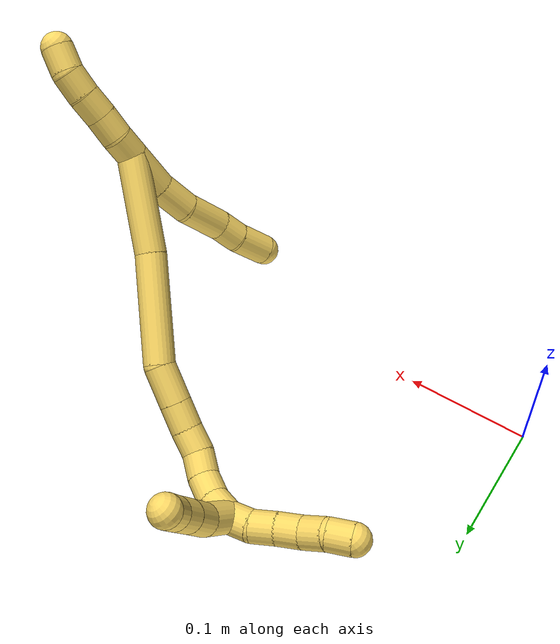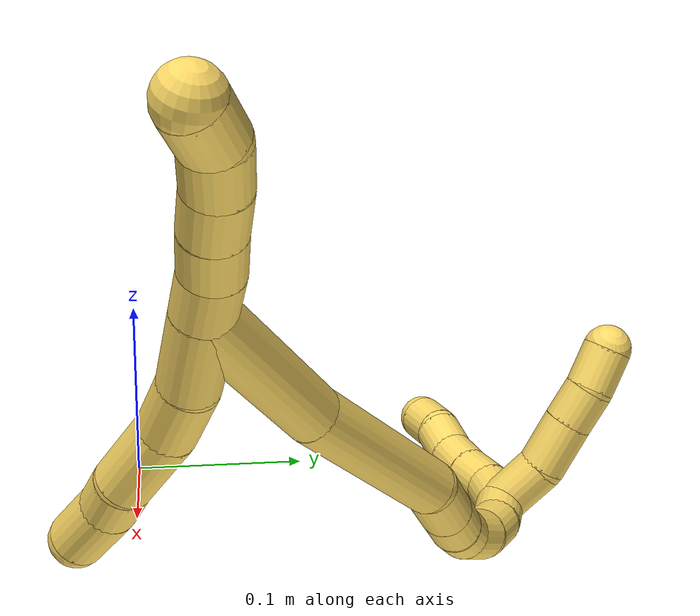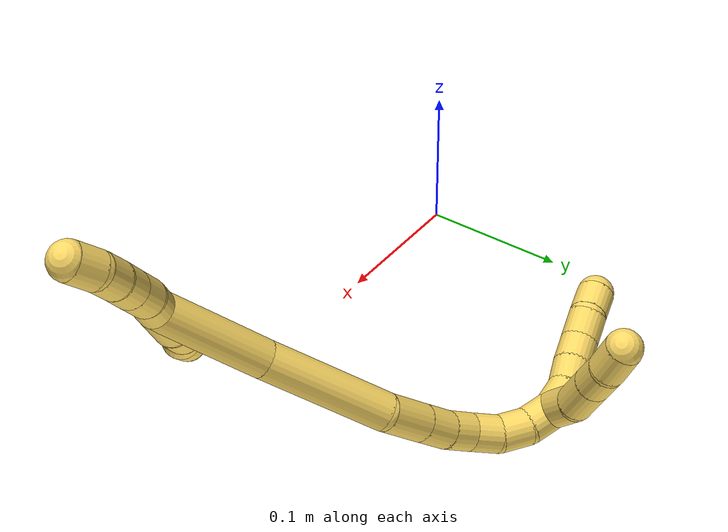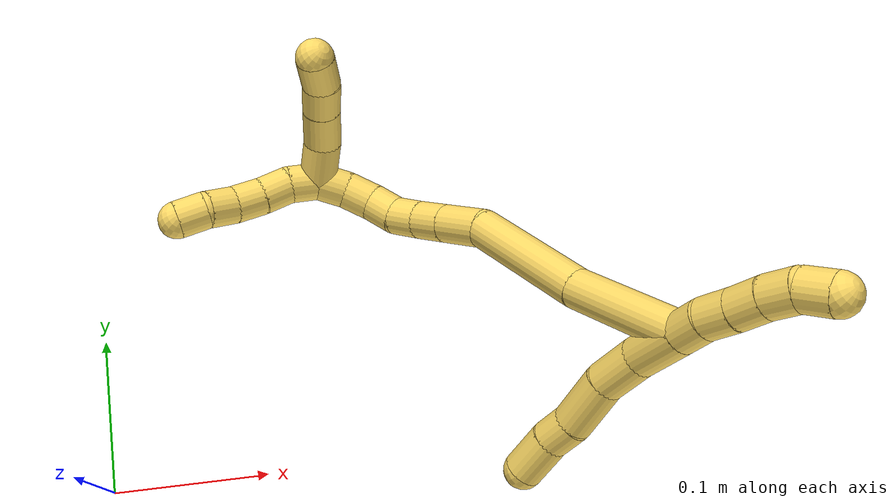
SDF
<sdf version="1.7">
 <world name="default">
  <model name="5">
   <static>0</static>
   <link name="5">
    <collision name="collision-cylinder-e_1_2_8">
     <pose>0.000114 -0.000291 -0.017579 3.12503 0.006497 0.747533</pose>
     <geometry><cylinder><radius>0.0125</radius><length>0.035163</length></cylinder></geometry>
     <surface>
      <friction><ode><mu>1.16</mu><mu2>1.16</mu2><slip1>0</slip1><slip2>0</slip2></ode></friction>
      <contact><ode><kp>1e+06</kp><kd>1</kd><max_vel>0</max_vel><min_depth>0.001</min_depth></ode></contact>
     </surface>
    </collision>
    <visual name="visual-cylinder-e_1_2_8">
     <pose>0.000114 -0.000291 -0.017579 3.12503 0.006497 0.747533</pose>
     <geometry><cylinder><radius>0.0125</radius><length>0.035163</length></cylinder></geometry>
     <material><ambient>1 0.858824 0.4 1</ambient></material>
    </visual>
    <collision name="collision-cylinder-e_2_8_9">
     <pose>-0.001704 -0.002597 -0.049459 3.00166 -0.133036 -1.52009</pose>
     <geometry><cylinder><radius>0.0125</radius><length>0.029145</length></cylinder></geometry>
     <surface>
      <friction><ode><mu>1.16</mu><mu2>1.16</mu2><slip1>0</slip1><slip2>0</slip2></ode></friction>
      <contact><ode><kp>1e+06</kp><kd>1</kd><max_vel>0</max_vel><min_depth>0.001</min_depth></ode></contact>
     </surface>
    </collision>
    <visual name="visual-cylinder-e_2_8_9">
     <pose>-0.001704 -0.002597 -0.049459 3.00166 -0.133036 -1.52009</pose>
     <geometry><cylinder><radius>0.0125</radius><length>0.029145</length></cylinder></geometry>
     <material><ambient>1 0.858824 0.4 1</ambient></material>
    </visual>
    <collision name="collision-cylinder-e_3_9_10">
     <pose>-0.005402 -0.01108 -0.08067 2.77621 -0.097187 -0.514773</pose>
     <geometry><cylinder><radius>0.0125</radius><length>0.036378</length></cylinder></geometry>
     <surface>
      <friction><ode><mu>1.16</mu><mu2>1.16</mu2><slip1>0</slip1><slip2>0</slip2></ode></friction>
      <contact><ode><kp>1e+06</kp><kd>1</kd><max_vel>0</max_vel><min_depth>0.001</min_depth></ode></contact>
     </surface>
    </collision>
    <visual name="visual-cylinder-e_3_9_10">
     <pose>-0.005402 -0.01108 -0.08067 2.77621 -0.097187 -0.514773</pose>
     <geometry><cylinder><radius>0.0125</radius><length>0.036378</length></cylinder></geometry>
     <material><ambient>1 0.858824 0.4 1</ambient></material>
    </visual>
    <collision name="collision-cylinder-e_4_10_11">
     <pose>-0.00909 -0.019291 -0.107341 2.96501 -0.191531 -1.65245</pose>
     <geometry><cylinder><radius>0.0125</radius><length>0.020204</length></cylinder></geometry>
     <surface>
      <friction><ode><mu>1.16</mu><mu2>1.16</mu2><slip1>0</slip1><slip2>0</slip2></ode></friction>
      <contact><ode><kp>1e+06</kp><kd>1</kd><max_vel>0</max_vel><min_depth>0.001</min_depth></ode></contact>
     </surface>
    </collision>
    <visual name="visual-cylinder-e_4_10_11">
     <pose>-0.00909 -0.019291 -0.107341 2.96501 -0.191531 -1.65245</pose>
     <geometry><cylinder><radius>0.0125</radius><length>0.020204</length></cylinder></geometry>
     <material><ambient>1 0.858824 0.4 1</ambient></material>
    </visual>
    <collision name="collision-cylinder-e_5_11_6">
     <pose>-0.013747 -0.025998 -0.130511 2.78689 -0.188919 -0.972511</pose>
     <geometry><cylinder><radius>0.0125</radius><length>0.029111</length></cylinder></geometry>
     <surface>
      <friction><ode><mu>1.16</mu><mu2>1.16</mu2><slip1>0</slip1><slip2>0</slip2></ode></friction>
      <contact><ode><kp>1e+06</kp><kd>1</kd><max_vel>0</max_vel><min_depth>0.001</min_depth></ode></contact>
     </surface>
    </collision>
    <visual name="visual-cylinder-e_5_11_6">
     <pose>-0.013747 -0.025998 -0.130511 2.78689 -0.188919 -0.972511</pose>
     <geometry><cylinder><radius>0.0125</radius><length>0.029111</length></cylinder></geometry>
     <material><ambient>1 0.858824 0.4 1</ambient></material>
    </visual>
    <collision name="collision-cylinder-e_1_2_12">
     <pose>-0.000108 0.000196 0.009997 -0.019618 -0.01075 0.000105</pose>
     <geometry><cylinder><radius>0.0125</radius><length>0.02</length></cylinder></geometry>
     <surface>
      <friction><ode><mu>1.16</mu><mu2>1.16</mu2><slip1>0</slip1><slip2>0</slip2></ode></friction>
      <contact><ode><kp>1e+06</kp><kd>1</kd><max_vel>0</max_vel><min_depth>0.001</min_depth></ode></contact>
     </surface>
    </collision>
    <visual name="visual-cylinder-e_1_2_12">
     <pose>-0.000108 0.000196 0.009997 -0.019618 -0.01075 0.000105</pose>
     <geometry><cylinder><radius>0.0125</radius><length>0.02</length></cylinder></geometry>
     <material><ambient>1 0.858824 0.4 1</ambient></material>
    </visual>
    <collision name="collision-cylinder-e_2_12_13">
     <pose>0.000728 -0.001109 0.029837 0.151348 0.094464 0.007167</pose>
     <geometry><cylinder><radius>0.0125</radius><length>0.02</length></cylinder></geometry>
     <surface>
      <friction><ode><mu>1.16</mu><mu2>1.16</mu2><slip1>0</slip1><slip2>0</slip2></ode></friction>
      <contact><ode><kp>1e+06</kp><kd>1</kd><max_vel>0</max_vel><min_depth>0.001</min_depth></ode></contact>
     </surface>
    </collision>
    <visual name="visual-cylinder-e_2_12_13">
     <pose>0.000728 -0.001109 0.029837 0.151348 0.094464 0.007167</pose>
     <geometry><cylinder><radius>0.0125</radius><length>0.02</length></cylinder></geometry>
     <material><ambient>1 0.858824 0.4 1</ambient></material>
    </visual>
    <collision name="collision-cylinder-e_3_13_14">
     <pose>0.002674 -0.00352 0.049586 0.091585 0.100443 0.004607</pose>
     <geometry><cylinder><radius>0.0125</radius><length>0.02</length></cylinder></geometry>
     <surface>
      <friction><ode><mu>1.16</mu><mu2>1.16</mu2><slip1>0</slip1><slip2>0</slip2></ode></friction>
      <contact><ode><kp>1e+06</kp><kd>1</kd><max_vel>0</max_vel><min_depth>0.001</min_depth></ode></contact>
     </surface>
    </collision>
    <visual name="visual-cylinder-e_3_13_14">
     <pose>0.002674 -0.00352 0.049586 0.091585 0.100443 0.004607</pose>
     <geometry><cylinder><radius>0.0125</radius><length>0.02</length></cylinder></geometry>
     <material><ambient>1 0.858824 0.4 1</ambient></material>
    </visual>
    <collision name="collision-cylinder-e_4_14_15">
     <pose>0.004746 -0.006483 0.069222 0.208001 0.107152 0.011195</pose>
     <geometry><cylinder><radius>0.0125</radius><length>0.02</length></cylinder></geometry>
     <surface>
      <friction><ode><mu>1.16</mu><mu2>1.16</mu2><slip1>0</slip1><slip2>0</slip2></ode></friction>
      <contact><ode><kp>1e+06</kp><kd>1</kd><max_vel>0</max_vel><min_depth>0.001</min_depth></ode></contact>
     </surface>
    </collision>
    <visual name="visual-cylinder-e_4_14_15">
     <pose>0.004746 -0.006483 0.069222 0.208001 0.107152 0.011195</pose>
     <geometry><cylinder><radius>0.0125</radius><length>0.02</length></cylinder></geometry>
     <material><ambient>1 0.858824 0.4 1</ambient></material>
    </visual>
    <collision name="collision-cylinder-e_5_15_5">
     <pose>0.007318 -0.013755 0.087347 0.556172 0.150799 0.043126</pose>
     <geometry><cylinder><radius>0.0125</radius><length>0.02</length></cylinder></geometry>
     <surface>
      <friction><ode><mu>1.16</mu><mu2>1.16</mu2><slip1>0</slip1><slip2>0</slip2></ode></friction>
      <contact><ode><kp>1e+06</kp><kd>1</kd><max_vel>0</max_vel><min_depth>0.001</min_depth></ode></contact>
     </surface>
    </collision>
    <visual name="visual-cylinder-e_5_15_5">
     <pose>0.007318 -0.013755 0.087347 0.556172 0.150799 0.043126</pose>
     <geometry><cylinder><radius>0.0125</radius><length>0.02</length></cylinder></geometry>
     <material><ambient>1 0.858824 0.4 1</ambient></material>
    </visual>
    <collision name="collision-cylinder-e_1_2_16">
     <pose>-0.000765 0.026212 -0.029201 -2.41007 -0.019502 0.05091</pose>
     <geometry><cylinder><radius>0.0125</radius><length>0.078494</length></cylinder></geometry>
     <surface>
      <friction><ode><mu>1.16</mu><mu2>1.16</mu2><slip1>0</slip1><slip2>0</slip2></ode></friction>
      <contact><ode><kp>1e+06</kp><kd>1</kd><max_vel>0</max_vel><min_depth>0.001</min_depth></ode></contact>
     </surface>
    </collision>
    <visual name="visual-cylinder-e_1_2_16">
     <pose>-0.000765 0.026212 -0.029201 -2.41007 -0.019502 0.05091</pose>
     <geometry><cylinder><radius>0.0125</radius><length>0.078494</length></cylinder></geometry>
     <material><ambient>1 0.858824 0.4 1</ambient></material>
    </visual>
    <collision name="collision-cylinder-e_2_16_17">
     <pose>-0.00197 0.085616 -0.086538 -2.27395 -0.010094 0.021788</pose>
     <geometry><cylinder><radius>0.0125</radius><length>0.08703</length></cylinder></geometry>
     <surface>
      <friction><ode><mu>1.16</mu><mu2>1.16</mu2><slip1>0</slip1><slip2>0</slip2></ode></friction>
      <contact><ode><kp>1e+06</kp><kd>1</kd><max_vel>0</max_vel><min_depth>0.001</min_depth></ode></contact>
     </surface>
    </collision>
    <visual name="visual-cylinder-e_2_16_17">
     <pose>-0.00197 0.085616 -0.086538 -2.27395 -0.010094 0.021788</pose>
     <geometry><cylinder><radius>0.0125</radius><length>0.08703</length></cylinder></geometry>
     <material><ambient>1 0.858824 0.4 1</ambient></material>
    </visual>
    <collision name="collision-cylinder-e_3_17_18">
     <pose>-0.004953 0.127097 -0.127643 -2.57289 -0.163796 0.547577</pose>
     <geometry><cylinder><radius>0.0125</radius><length>0.031199</length></cylinder></geometry>
     <surface>
      <friction><ode><mu>1.16</mu><mu2>1.16</mu2><slip1>0</slip1><slip2>0</slip2></ode></friction>
      <contact><ode><kp>1e+06</kp><kd>1</kd><max_vel>0</max_vel><min_depth>0.001</min_depth></ode></contact>
     </surface>
    </collision>
    <visual name="visual-cylinder-e_3_17_18">
     <pose>-0.004953 0.127097 -0.127643 -2.57289 -0.163796 0.547577</pose>
     <geometry><cylinder><radius>0.0125</radius><length>0.031199</length></cylinder></geometry>
     <material><ambient>1 0.858824 0.4 1</ambient></material>
    </visual>
    <collision name="collision-cylinder-e_4_18_19">
     <pose>-0.009394 0.141334 -0.149868 -2.57041 -0.170764 0.56728</pose>
     <geometry><cylinder><radius>0.0125</radius><length>0.022332</length></cylinder></geometry>
     <surface>
      <friction><ode><mu>1.16</mu><mu2>1.16</mu2><slip1>0</slip1><slip2>0</slip2></ode></friction>
      <contact><ode><kp>1e+06</kp><kd>1</kd><max_vel>0</max_vel><min_depth>0.001</min_depth></ode></contact>
     </surface>
    </collision>
    <visual name="visual-cylinder-e_4_18_19">
     <pose>-0.009394 0.141334 -0.149868 -2.57041 -0.170764 0.56728</pose>
     <geometry><cylinder><radius>0.0125</radius><length>0.022332</length></cylinder></geometry>
     <material><ambient>1 0.858824 0.4 1</ambient></material>
    </visual>
    <collision name="collision-cylinder-e_5_19_20">
     <pose>-0.0143 0.152903 -0.166833 -2.51164 -0.305473 0.882739</pose>
     <geometry><cylinder><radius>0.0125</radius><length>0.020005</length></cylinder></geometry>
     <surface>
      <friction><ode><mu>1.16</mu><mu2>1.16</mu2><slip1>0</slip1><slip2>0</slip2></ode></friction>
      <contact><ode><kp>1e+06</kp><kd>1</kd><max_vel>0</max_vel><min_depth>0.001</min_depth></ode></contact>
     </surface>
    </collision>
    <visual name="visual-cylinder-e_5_19_20">
     <pose>-0.0143 0.152903 -0.166833 -2.51164 -0.305473 0.882739</pose>
     <geometry><cylinder><radius>0.0125</radius><length>0.020005</length></cylinder></geometry>
     <material><ambient>1 0.858824 0.4 1</ambient></material>
    </visual>
    <collision name="collision-cylinder-e_6_20_21">
     <pose>-0.020323 0.166425 -0.179951 -2.17102 -0.305038 0.567249</pose>
     <geometry><cylinder><radius>0.0125</radius><length>0.020081</length></cylinder></geometry>
     <surface>
      <friction><ode><mu>1.16</mu><mu2>1.16</mu2><slip1>0</slip1><slip2>0</slip2></ode></friction>
      <contact><ode><kp>1e+06</kp><kd>1</kd><max_vel>0</max_vel><min_depth>0.001</min_depth></ode></contact>
     </surface>
    </collision>
    <visual name="visual-cylinder-e_6_20_21">
     <pose>-0.020323 0.166425 -0.179951 -2.17102 -0.305038 0.567249</pose>
     <geometry><cylinder><radius>0.0125</radius><length>0.020081</length></cylinder></geometry>
     <material><ambient>1 0.858824 0.4 1</ambient></material>
    </visual>
    <collision name="collision-cylinder-e_7_21_22">
     <pose>-0.029283 0.181652 -0.189304 -2.06473 -0.620448 0.985161</pose>
     <geometry><cylinder><radius>0.0125</radius><length>0.020448</length></cylinder></geometry>
     <surface>
      <friction><ode><mu>1.16</mu><mu2>1.16</mu2><slip1>0</slip1><slip2>0</slip2></ode></friction>
      <contact><ode><kp>1e+06</kp><kd>1</kd><max_vel>0</max_vel><min_depth>0.001</min_depth></ode></contact>
     </surface>
    </collision>
    <visual name="visual-cylinder-e_7_21_22">
     <pose>-0.029283 0.181652 -0.189304 -2.06473 -0.620448 0.985161</pose>
     <geometry><cylinder><radius>0.0125</radius><length>0.020448</length></cylinder></geometry>
     <material><ambient>1 0.858824 0.4 1</ambient></material>
    </visual>
    <collision name="collision-cylinder-e_8_22_1">
     <pose>-0.043356 0.194431 -0.196132 -2.0572 -0.921514 1.37841</pose>
     <geometry><cylinder><radius>0.0125</radius><length>0.020411</length></cylinder></geometry>
     <surface>
      <friction><ode><mu>1.16</mu><mu2>1.16</mu2><slip1>0</slip1><slip2>0</slip2></ode></friction>
      <contact><ode><kp>1e+06</kp><kd>1</kd><max_vel>0</max_vel><min_depth>0.001</min_depth></ode></contact>
     </surface>
    </collision>
    <visual name="visual-cylinder-e_8_22_1">
     <pose>-0.043356 0.194431 -0.196132 -2.0572 -0.921514 1.37841</pose>
     <geometry><cylinder><radius>0.0125</radius><length>0.020411</length></cylinder></geometry>
     <material><ambient>1 0.858824 0.4 1</ambient></material>
    </visual>
    <collision name="collision-cylinder-e_1_1_23">
     <pose>-0.060529 0.201283 -0.203047 -2.80792 -1.13008 2.62235</pose>
     <geometry><cylinder><radius>0.0125</radius><length>0.02</length></cylinder></geometry>
     <surface>
      <friction><ode><mu>1.16</mu><mu2>1.16</mu2><slip1>0</slip1><slip2>0</slip2></ode></friction>
      <contact><ode><kp>1e+06</kp><kd>1</kd><max_vel>0</max_vel><min_depth>0.001</min_depth></ode></contact>
     </surface>
    </collision>
    <visual name="visual-cylinder-e_1_1_23">
     <pose>-0.060529 0.201283 -0.203047 -2.80792 -1.13008 2.62235</pose>
     <geometry><cylinder><radius>0.0125</radius><length>0.02</length></cylinder></geometry>
     <material><ambient>1 0.858824 0.4 1</ambient></material>
    </visual>
    <collision name="collision-cylinder-e_2_23_24">
     <pose>-0.078603 0.201124 -0.211083 2.7711 -1.12667 -2.56474</pose>
     <geometry><cylinder><radius>0.0125</radius><length>0.02</length></cylinder></geometry>
     <surface>
      <friction><ode><mu>1.16</mu><mu2>1.16</mu2><slip1>0</slip1><slip2>0</slip2></ode></friction>
      <contact><ode><kp>1e+06</kp><kd>1</kd><max_vel>0</max_vel><min_depth>0.001</min_depth></ode></contact>
     </surface>
    </collision>
    <visual name="visual-cylinder-e_2_23_24">
     <pose>-0.078603 0.201124 -0.211083 2.7711 -1.12667 -2.56474</pose>
     <geometry><cylinder><radius>0.0125</radius><length>0.02</length></cylinder></geometry>
     <material><ambient>1 0.858824 0.4 1</ambient></material>
    </visual>
    <collision name="collision-cylinder-e_3_24_25">
     <pose>-0.096983 0.198841 -0.21856 2.93492 -1.20815 -2.84329</pose>
     <geometry><cylinder><radius>0.0125</radius><length>0.02</length></cylinder></geometry>
     <surface>
      <friction><ode><mu>1.16</mu><mu2>1.16</mu2><slip1>0</slip1><slip2>0</slip2></ode></friction>
      <contact><ode><kp>1e+06</kp><kd>1</kd><max_vel>0</max_vel><min_depth>0.001</min_depth></ode></contact>
     </surface>
    </collision>
    <visual name="visual-cylinder-e_3_24_25">
     <pose>-0.096983 0.198841 -0.21856 2.93492 -1.20815 -2.84329</pose>
     <geometry><cylinder><radius>0.0125</radius><length>0.02</length></cylinder></geometry>
     <material><ambient>1 0.858824 0.4 1</ambient></material>
    </visual>
    <collision name="collision-cylinder-e_4_25_26">
     <pose>-0.116237 0.197835 -0.223379 2.93861 -1.43281 -2.90873</pose>
     <geometry><cylinder><radius>0.0125</radius><length>0.02</length></cylinder></geometry>
     <surface>
      <friction><ode><mu>1.16</mu><mu2>1.16</mu2><slip1>0</slip1><slip2>0</slip2></ode></friction>
      <contact><ode><kp>1e+06</kp><kd>1</kd><max_vel>0</max_vel><min_depth>0.001</min_depth></ode></contact>
     </surface>
    </collision>
    <visual name="visual-cylinder-e_4_25_26">
     <pose>-0.116237 0.197835 -0.223379 2.93861 -1.43281 -2.90873</pose>
     <geometry><cylinder><radius>0.0125</radius><length>0.02</length></cylinder></geometry>
     <material><ambient>1 0.858824 0.4 1</ambient></material>
    </visual>
    <collision name="collision-cylinder-e_5_26_4">
     <pose>-0.135097 0.19688 -0.229125 2.98875 -1.10955 -2.89571</pose>
     <geometry><cylinder><radius>0.0125</radius><length>0.02</length></cylinder></geometry>
     <surface>
      <friction><ode><mu>1.16</mu><mu2>1.16</mu2><slip1>0</slip1><slip2>0</slip2></ode></friction>
      <contact><ode><kp>1e+06</kp><kd>1</kd><max_vel>0</max_vel><min_depth>0.001</min_depth></ode></contact>
     </surface>
    </collision>
    <visual name="visual-cylinder-e_5_26_4">
     <pose>-0.135097 0.19688 -0.229125 2.98875 -1.10955 -2.89571</pose>
     <geometry><cylinder><radius>0.0125</radius><length>0.02</length></cylinder></geometry>
     <material><ambient>1 0.858824 0.4 1</ambient></material>
    </visual>
    <collision name="collision-cylinder-e_1_1_27">
     <pose>-0.052996 0.208595 -0.187246 -0.637026 -0.102856 0.033942</pose>
     <geometry><cylinder><radius>0.0125</radius><length>0.029439</length></cylinder></geometry>
     <surface>
      <friction><ode><mu>1.16</mu><mu2>1.16</mu2><slip1>0</slip1><slip2>0</slip2></ode></friction>
      <contact><ode><kp>1e+06</kp><kd>1</kd><max_vel>0</max_vel><min_depth>0.001</min_depth></ode></contact>
     </surface>
    </collision>
    <visual name="visual-cylinder-e_1_1_27">
     <pose>-0.052996 0.208595 -0.187246 -0.637026 -0.102856 0.033942</pose>
     <geometry><cylinder><radius>0.0125</radius><length>0.029439</length></cylinder></geometry>
     <material><ambient>1 0.858824 0.4 1</ambient></material>
    </visual>
    <collision name="collision-cylinder-e_2_27_28">
     <pose>-0.059237 0.223151 -0.163962 -0.469907 -0.351091 0.084865</pose>
     <geometry><cylinder><radius>0.0125</radius><length>0.027505</length></cylinder></geometry>
     <surface>
      <friction><ode><mu>1.16</mu><mu2>1.16</mu2><slip1>0</slip1><slip2>0</slip2></ode></friction>
      <contact><ode><kp>1e+06</kp><kd>1</kd><max_vel>0</max_vel><min_depth>0.001</min_depth></ode></contact>
     </surface>
    </collision>
    <visual name="visual-cylinder-e_2_27_28">
     <pose>-0.059237 0.223151 -0.163962 -0.469907 -0.351091 0.084865</pose>
     <geometry><cylinder><radius>0.0125</radius><length>0.027505</length></cylinder></geometry>
     <material><ambient>1 0.858824 0.4 1</ambient></material>
    </visual>
    <collision name="collision-cylinder-e_3_28_29">
     <pose>-0.067225 0.233488 -0.143751 -0.476539 -0.321293 0.078674</pose>
     <geometry><cylinder><radius>0.0125</radius><length>0.02063</length></cylinder></geometry>
     <surface>
      <friction><ode><mu>1.16</mu><mu2>1.16</mu2><slip1>0</slip1><slip2>0</slip2></ode></friction>
      <contact><ode><kp>1e+06</kp><kd>1</kd><max_vel>0</max_vel><min_depth>0.001</min_depth></ode></contact>
     </surface>
    </collision>
    <visual name="visual-cylinder-e_3_28_29">
     <pose>-0.067225 0.233488 -0.143751 -0.476539 -0.321293 0.078674</pose>
     <geometry><cylinder><radius>0.0125</radius><length>0.02063</length></cylinder></geometry>
     <material><ambient>1 0.858824 0.4 1</ambient></material>
    </visual>
    <collision name="collision-cylinder-e_4_29_3">
     <pose>-0.076099 0.242556 -0.126498 -0.491296 -0.52468 0.134443</pose>
     <geometry><cylinder><radius>0.0125</radius><length>0.022425</length></cylinder></geometry>
     <surface>
      <friction><ode><mu>1.16</mu><mu2>1.16</mu2><slip1>0</slip1><slip2>0</slip2></ode></friction>
      <contact><ode><kp>1e+06</kp><kd>1</kd><max_vel>0</max_vel><min_depth>0.001</min_depth></ode></contact>
     </surface>
    </collision>
    <visual name="visual-cylinder-e_4_29_3">
     <pose>-0.076099 0.242556 -0.126498 -0.491296 -0.52468 0.134443</pose>
     <geometry><cylinder><radius>0.0125</radius><length>0.022425</length></cylinder></geometry>
     <material><ambient>1 0.858824 0.4 1</ambient></material>
    </visual>
    <collision name="collision-sphere-3">
     <pose>-0.081715 0.247134 -0.117941 0 -0 0</pose>
     <geometry><sphere><radius>0.0125</radius></sphere></geometry>
     <surface>
      <friction><ode><mu>1.16</mu><mu2>1.16</mu2><slip1>0</slip1><slip2>0</slip2></ode></friction>
      <contact><ode><kp>1e+06</kp><kd>1</kd><max_vel>0</max_vel><min_depth>0.001</min_depth></ode></contact>
     </surface>
    </collision>
    <visual name="visual-sphere-3">
     <pose>-0.081715 0.247134 -0.117941 0 -0 0</pose>
     <geometry><sphere><radius>0.0125</radius></sphere></geometry>
     <material><ambient>1 0.858824 0.4 1</ambient></material>
    </visual>
    <collision name="collision-sphere-29">
     <pose>-0.070482 0.237978 -0.135054 0 -0 0</pose>
     <geometry><sphere><radius>0.0125</radius></sphere></geometry>
     <surface>
      <friction><ode><mu>1.16</mu><mu2>1.16</mu2><slip1>0</slip1><slip2>0</slip2></ode></friction>
      <contact><ode><kp>1e+06</kp><kd>1</kd><max_vel>0</max_vel><min_depth>0.001</min_depth></ode></contact>
     </surface>
    </collision>
    <visual name="visual-sphere-29">
     <pose>-0.070482 0.237978 -0.135054 0 -0 0</pose>
     <geometry><sphere><radius>0.0125</radius></sphere></geometry>
     <material><ambient>1 0.858824 0.4 1</ambient></material>
    </visual>
    <collision name="collision-sphere-28">
     <pose>-0.063967 0.228999 -0.152448 0 -0 0</pose>
     <geometry><sphere><radius>0.0125</radius></sphere></geometry>
     <surface>
      <friction><ode><mu>1.16</mu><mu2>1.16</mu2><slip1>0</slip1><slip2>0</slip2></ode></friction>
      <contact><ode><kp>1e+06</kp><kd>1</kd><max_vel>0</max_vel><min_depth>0.001</min_depth></ode></contact>
     </surface>
    </collision>
    <visual name="visual-sphere-28">
     <pose>-0.063967 0.228999 -0.152448 0 -0 0</pose>
     <geometry><sphere><radius>0.0125</radius></sphere></geometry>
     <material><ambient>1 0.858824 0.4 1</ambient></material>
    </visual>
    <collision name="collision-sphere-27">
     <pose>-0.054507 0.217304 -0.175476 0 -0 0</pose>
     <geometry><sphere><radius>0.0125</radius></sphere></geometry>
     <surface>
      <friction><ode><mu>1.16</mu><mu2>1.16</mu2><slip1>0</slip1><slip2>0</slip2></ode></friction>
      <contact><ode><kp>1e+06</kp><kd>1</kd><max_vel>0</max_vel><min_depth>0.001</min_depth></ode></contact>
     </surface>
    </collision>
    <visual name="visual-sphere-27">
     <pose>-0.054507 0.217304 -0.175476 0 -0 0</pose>
     <geometry><sphere><radius>0.0125</radius></sphere></geometry>
     <material><ambient>1 0.858824 0.4 1</ambient></material>
    </visual>
    <collision name="collision-sphere-4">
     <pose>-0.144052 0.196203 -0.233524 0 -0 0</pose>
     <geometry><sphere><radius>0.0125</radius></sphere></geometry>
     <surface>
      <friction><ode><mu>1.16</mu><mu2>1.16</mu2><slip1>0</slip1><slip2>0</slip2></ode></friction>
      <contact><ode><kp>1e+06</kp><kd>1</kd><max_vel>0</max_vel><min_depth>0.001</min_depth></ode></contact>
     </surface>
    </collision>
    <visual name="visual-sphere-4">
     <pose>-0.144052 0.196203 -0.233524 0 -0 0</pose>
     <geometry><sphere><radius>0.0125</radius></sphere></geometry>
     <material><ambient>1 0.858824 0.4 1</ambient></material>
    </visual>
    <collision name="collision-sphere-26">
     <pose>-0.126142 0.197558 -0.224726 0 -0 0</pose>
     <geometry><sphere><radius>0.0125</radius></sphere></geometry>
     <surface>
      <friction><ode><mu>1.16</mu><mu2>1.16</mu2><slip1>0</slip1><slip2>0</slip2></ode></friction>
      <contact><ode><kp>1e+06</kp><kd>1</kd><max_vel>0</max_vel><min_depth>0.001</min_depth></ode></contact>
     </surface>
    </collision>
    <visual name="visual-sphere-26">
     <pose>-0.126142 0.197558 -0.224726 0 -0 0</pose>
     <geometry><sphere><radius>0.0125</radius></sphere></geometry>
     <material><ambient>1 0.858824 0.4 1</ambient></material>
    </visual>
    <collision name="collision-sphere-25">
     <pose>-0.106333 0.198113 -0.222032 0 -0 0</pose>
     <geometry><sphere><radius>0.0125</radius></sphere></geometry>
     <surface>
      <friction><ode><mu>1.16</mu><mu2>1.16</mu2><slip1>0</slip1><slip2>0</slip2></ode></friction>
      <contact><ode><kp>1e+06</kp><kd>1</kd><max_vel>0</max_vel><min_depth>0.001</min_depth></ode></contact>
     </surface>
    </collision>
    <visual name="visual-sphere-25">
     <pose>-0.106333 0.198113 -0.222032 0 -0 0</pose>
     <geometry><sphere><radius>0.0125</radius></sphere></geometry>
     <material><ambient>1 0.858824 0.4 1</ambient></material>
    </visual>
    <collision name="collision-sphere-24">
     <pose>-0.087633 0.199569 -0.215088 0 -0 0</pose>
     <geometry><sphere><radius>0.0125</radius></sphere></geometry>
     <surface>
      <friction><ode><mu>1.16</mu><mu2>1.16</mu2><slip1>0</slip1><slip2>0</slip2></ode></friction>
      <contact><ode><kp>1e+06</kp><kd>1</kd><max_vel>0</max_vel><min_depth>0.001</min_depth></ode></contact>
     </surface>
    </collision>
    <visual name="visual-sphere-24">
     <pose>-0.087633 0.199569 -0.215088 0 -0 0</pose>
     <geometry><sphere><radius>0.0125</radius></sphere></geometry>
     <material><ambient>1 0.858824 0.4 1</ambient></material>
    </visual>
    <collision name="collision-sphere-23">
     <pose>-0.069574 0.20268 -0.207078 0 -0 0</pose>
     <geometry><sphere><radius>0.0125</radius></sphere></geometry>
     <surface>
      <friction><ode><mu>1.16</mu><mu2>1.16</mu2><slip1>0</slip1><slip2>0</slip2></ode></friction>
      <contact><ode><kp>1e+06</kp><kd>1</kd><max_vel>0</max_vel><min_depth>0.001</min_depth></ode></contact>
     </surface>
    </collision>
    <visual name="visual-sphere-23">
     <pose>-0.069574 0.20268 -0.207078 0 -0 0</pose>
     <geometry><sphere><radius>0.0125</radius></sphere></geometry>
     <material><ambient>1 0.858824 0.4 1</ambient></material>
    </visual>
    <collision name="collision-sphere-1">
     <pose>-0.051485 0.199886 -0.199016 0 -0 0</pose>
     <geometry><sphere><radius>0.0125</radius></sphere></geometry>
     <surface>
      <friction><ode><mu>1.16</mu><mu2>1.16</mu2><slip1>0</slip1><slip2>0</slip2></ode></friction>
      <contact><ode><kp>1e+06</kp><kd>1</kd><max_vel>0</max_vel><min_depth>0.001</min_depth></ode></contact>
     </surface>
    </collision>
    <visual name="visual-sphere-1">
     <pose>-0.051485 0.199886 -0.199016 0 -0 0</pose>
     <geometry><sphere><radius>0.0125</radius></sphere></geometry>
     <material><ambient>1 0.858824 0.4 1</ambient></material>
    </visual>
    <collision name="collision-sphere-22">
     <pose>-0.035227 0.188976 -0.193248 0 -0 0</pose>
     <geometry><sphere><radius>0.0125</radius></sphere></geometry>
     <surface>
      <friction><ode><mu>1.16</mu><mu2>1.16</mu2><slip1>0</slip1><slip2>0</slip2></ode></friction>
      <contact><ode><kp>1e+06</kp><kd>1</kd><max_vel>0</max_vel><min_depth>0.001</min_depth></ode></contact>
     </surface>
    </collision>
    <visual name="visual-sphere-22">
     <pose>-0.035227 0.188976 -0.193248 0 -0 0</pose>
     <geometry><sphere><radius>0.0125</radius></sphere></geometry>
     <material><ambient>1 0.858824 0.4 1</ambient></material>
    </visual>
    <collision name="collision-sphere-21">
     <pose>-0.023339 0.174328 -0.18536 0 -0 0</pose>
     <geometry><sphere><radius>0.0125</radius></sphere></geometry>
     <surface>
      <friction><ode><mu>1.16</mu><mu2>1.16</mu2><slip1>0</slip1><slip2>0</slip2></ode></friction>
      <contact><ode><kp>1e+06</kp><kd>1</kd><max_vel>0</max_vel><min_depth>0.001</min_depth></ode></contact>
     </surface>
    </collision>
    <visual name="visual-sphere-21">
     <pose>-0.023339 0.174328 -0.18536 0 -0 0</pose>
     <geometry><sphere><radius>0.0125</radius></sphere></geometry>
     <material><ambient>1 0.858824 0.4 1</ambient></material>
    </visual>
    <collision name="collision-sphere-6">
     <pose>-0.01648 -0.030963 -0.143917 0 -0 0</pose>
     <geometry><sphere><radius>0.0125</radius></sphere></geometry>
     <surface>
      <friction><ode><mu>1.16</mu><mu2>1.16</mu2><slip1>0</slip1><slip2>0</slip2></ode></friction>
      <contact><ode><kp>1e+06</kp><kd>1</kd><max_vel>0</max_vel><min_depth>0.001</min_depth></ode></contact>
     </surface>
    </collision>
    <visual name="visual-sphere-6">
     <pose>-0.01648 -0.030963 -0.143917 0 -0 0</pose>
     <geometry><sphere><radius>0.0125</radius></sphere></geometry>
     <material><ambient>1 0.858824 0.4 1</ambient></material>
    </visual>
    <collision name="collision-sphere-11">
     <pose>-0.011013 -0.021033 -0.117104 0 -0 0</pose>
     <geometry><sphere><radius>0.0125</radius></sphere></geometry>
     <surface>
      <friction><ode><mu>1.16</mu><mu2>1.16</mu2><slip1>0</slip1><slip2>0</slip2></ode></friction>
      <contact><ode><kp>1e+06</kp><kd>1</kd><max_vel>0</max_vel><min_depth>0.001</min_depth></ode></contact>
     </surface>
    </collision>
    <visual name="visual-sphere-11">
     <pose>-0.011013 -0.021033 -0.117104 0 -0 0</pose>
     <geometry><sphere><radius>0.0125</radius></sphere></geometry>
     <material><ambient>1 0.858824 0.4 1</ambient></material>
    </visual>
    <collision name="collision-sphere-10">
     <pose>-0.007167 -0.017549 -0.097578 0 -0 0</pose>
     <geometry><sphere><radius>0.0125</radius></sphere></geometry>
     <surface>
      <friction><ode><mu>1.16</mu><mu2>1.16</mu2><slip1>0</slip1><slip2>0</slip2></ode></friction>
      <contact><ode><kp>1e+06</kp><kd>1</kd><max_vel>0</max_vel><min_depth>0.001</min_depth></ode></contact>
     </surface>
    </collision>
    <visual name="visual-sphere-10">
     <pose>-0.007167 -0.017549 -0.097578 0 -0 0</pose>
     <geometry><sphere><radius>0.0125</radius></sphere></geometry>
     <material><ambient>1 0.858824 0.4 1</ambient></material>
    </visual>
    <collision name="collision-sphere-9">
     <pose>-0.003637 -0.004612 -0.063762 0 -0 0</pose>
     <geometry><sphere><radius>0.0125</radius></sphere></geometry>
     <surface>
      <friction><ode><mu>1.16</mu><mu2>1.16</mu2><slip1>0</slip1><slip2>0</slip2></ode></friction>
      <contact><ode><kp>1e+06</kp><kd>1</kd><max_vel>0</max_vel><min_depth>0.001</min_depth></ode></contact>
     </surface>
    </collision>
    <visual name="visual-sphere-9">
     <pose>-0.003637 -0.004612 -0.063762 0 -0 0</pose>
     <geometry><sphere><radius>0.0125</radius></sphere></geometry>
     <material><ambient>1 0.858824 0.4 1</ambient></material>
    </visual>
    <collision name="collision-sphere-2">
     <geometry><sphere><radius>0.0125</radius></sphere></geometry>
     <surface>
      <friction><ode><mu>1.16</mu><mu2>1.16</mu2><slip1>0</slip1><slip2>0</slip2></ode></friction>
      <contact><ode><kp>1e+06</kp><kd>1</kd><max_vel>0</max_vel><min_depth>0.001</min_depth></ode></contact>
     </surface>
    </collision>
    <visual name="visual-sphere-2">
     <geometry><sphere><radius>0.0125</radius></sphere></geometry>
     <material><ambient>1 0.858824 0.4 1</ambient></material>
    </visual>
    <collision name="collision-sphere-19">
     <pose>-0.011292 0.147283 -0.159125 0 -0 0</pose>
     <geometry><sphere><radius>0.0125</radius></sphere></geometry>
     <surface>
      <friction><ode><mu>1.16</mu><mu2>1.16</mu2><slip1>0</slip1><slip2>0</slip2></ode></friction>
      <contact><ode><kp>1e+06</kp><kd>1</kd><max_vel>0</max_vel><min_depth>0.001</min_depth></ode></contact>
     </surface>
    </collision>
    <visual name="visual-sphere-19">
     <pose>-0.011292 0.147283 -0.159125 0 -0 0</pose>
     <geometry><sphere><radius>0.0125</radius></sphere></geometry>
     <material><ambient>1 0.858824 0.4 1</ambient></material>
    </visual>
    <collision name="collision-sphere-8">
     <pose>0.000228 -0.000582 -0.035157 0 -0 0</pose>
     <geometry><sphere><radius>0.0125</radius></sphere></geometry>
     <surface>
      <friction><ode><mu>1.16</mu><mu2>1.16</mu2><slip1>0</slip1><slip2>0</slip2></ode></friction>
      <contact><ode><kp>1e+06</kp><kd>1</kd><max_vel>0</max_vel><min_depth>0.001</min_depth></ode></contact>
     </surface>
    </collision>
    <visual name="visual-sphere-8">
     <pose>0.000228 -0.000582 -0.035157 0 -0 0</pose>
     <geometry><sphere><radius>0.0125</radius></sphere></geometry>
     <material><ambient>1 0.858824 0.4 1</ambient></material>
    </visual>
    <collision name="collision-sphere-12">
     <pose>-0.000215 0.000392 0.019995 0 -0 0</pose>
     <geometry><sphere><radius>0.0125</radius></sphere></geometry>
     <surface>
      <friction><ode><mu>1.16</mu><mu2>1.16</mu2><slip1>0</slip1><slip2>0</slip2></ode></friction>
      <contact><ode><kp>1e+06</kp><kd>1</kd><max_vel>0</max_vel><min_depth>0.001</min_depth></ode></contact>
     </surface>
    </collision>
    <visual name="visual-sphere-12">
     <pose>-0.000215 0.000392 0.019995 0 -0 0</pose>
     <geometry><sphere><radius>0.0125</radius></sphere></geometry>
     <material><ambient>1 0.858824 0.4 1</ambient></material>
    </visual>
    <collision name="collision-sphere-13">
     <pose>0.001671 -0.00261 0.039678 0 -0 0</pose>
     <geometry><sphere><radius>0.0125</radius></sphere></geometry>
     <surface>
      <friction><ode><mu>1.16</mu><mu2>1.16</mu2><slip1>0</slip1><slip2>0</slip2></ode></friction>
      <contact><ode><kp>1e+06</kp><kd>1</kd><max_vel>0</max_vel><min_depth>0.001</min_depth></ode></contact>
     </surface>
    </collision>
    <visual name="visual-sphere-13">
     <pose>0.001671 -0.00261 0.039678 0 -0 0</pose>
     <geometry><sphere><radius>0.0125</radius></sphere></geometry>
     <material><ambient>1 0.858824 0.4 1</ambient></material>
    </visual>
    <collision name="collision-sphere-14">
     <pose>0.003677 -0.00443 0.059494 0 -0 0</pose>
     <geometry><sphere><radius>0.0125</radius></sphere></geometry>
     <surface>
      <friction><ode><mu>1.16</mu><mu2>1.16</mu2><slip1>0</slip1><slip2>0</slip2></ode></friction>
      <contact><ode><kp>1e+06</kp><kd>1</kd><max_vel>0</max_vel><min_depth>0.001</min_depth></ode></contact>
     </surface>
    </collision>
    <visual name="visual-sphere-14">
     <pose>0.003677 -0.00443 0.059494 0 -0 0</pose>
     <geometry><sphere><radius>0.0125</radius></sphere></geometry>
     <material><ambient>1 0.858824 0.4 1</ambient></material>
    </visual>
    <collision name="collision-sphere-15">
     <pose>0.005816 -0.008536 0.078951 0 -0 0</pose>
     <geometry><sphere><radius>0.0125</radius></sphere></geometry>
     <surface>
      <friction><ode><mu>1.16</mu><mu2>1.16</mu2><slip1>0</slip1><slip2>0</slip2></ode></friction>
      <contact><ode><kp>1e+06</kp><kd>1</kd><max_vel>0</max_vel><min_depth>0.001</min_depth></ode></contact>
     </surface>
    </collision>
    <visual name="visual-sphere-15">
     <pose>0.005816 -0.008536 0.078951 0 -0 0</pose>
     <geometry><sphere><radius>0.0125</radius></sphere></geometry>
     <material><ambient>1 0.858824 0.4 1</ambient></material>
    </visual>
    <collision name="collision-sphere-5">
     <pose>0.00882 -0.018975 0.095744 0 -0 0</pose>
     <geometry><sphere><radius>0.0125</radius></sphere></geometry>
     <surface>
      <friction><ode><mu>1.16</mu><mu2>1.16</mu2><slip1>0</slip1><slip2>0</slip2></ode></friction>
      <contact><ode><kp>1e+06</kp><kd>1</kd><max_vel>0</max_vel><min_depth>0.001</min_depth></ode></contact>
     </surface>
    </collision>
    <visual name="visual-sphere-5">
     <pose>0.00882 -0.018975 0.095744 0 -0 0</pose>
     <geometry><sphere><radius>0.0125</radius></sphere></geometry>
     <material><ambient>1 0.858824 0.4 1</ambient></material>
    </visual>
    <collision name="collision-sphere-16">
     <pose>-0.001531 0.052424 -0.058401 0 -0 0</pose>
     <geometry><sphere><radius>0.0125</radius></sphere></geometry>
     <surface>
      <friction><ode><mu>1.16</mu><mu2>1.16</mu2><slip1>0</slip1><slip2>0</slip2></ode></friction>
      <contact><ode><kp>1e+06</kp><kd>1</kd><max_vel>0</max_vel><min_depth>0.001</min_depth></ode></contact>
     </surface>
    </collision>
    <visual name="visual-sphere-16">
     <pose>-0.001531 0.052424 -0.058401 0 -0 0</pose>
     <geometry><sphere><radius>0.0125</radius></sphere></geometry>
     <material><ambient>1 0.858824 0.4 1</ambient></material>
    </visual>
    <collision name="collision-sphere-17">
     <pose>-0.002409 0.118808 -0.114674 0 -0 0</pose>
     <geometry><sphere><radius>0.0125</radius></sphere></geometry>
     <surface>
      <friction><ode><mu>1.16</mu><mu2>1.16</mu2><slip1>0</slip1><slip2>0</slip2></ode></friction>
      <contact><ode><kp>1e+06</kp><kd>1</kd><max_vel>0</max_vel><min_depth>0.001</min_depth></ode></contact>
     </surface>
    </collision>
    <visual name="visual-sphere-17">
     <pose>-0.002409 0.118808 -0.114674 0 -0 0</pose>
     <geometry><sphere><radius>0.0125</radius></sphere></geometry>
     <material><ambient>1 0.858824 0.4 1</ambient></material>
    </visual>
    <collision name="collision-sphere-18">
     <pose>-0.007497 0.135385 -0.140611 0 -0 0</pose>
     <geometry><sphere><radius>0.0125</radius></sphere></geometry>
     <surface>
      <friction><ode><mu>1.16</mu><mu2>1.16</mu2><slip1>0</slip1><slip2>0</slip2></ode></friction>
      <contact><ode><kp>1e+06</kp><kd>1</kd><max_vel>0</max_vel><min_depth>0.001</min_depth></ode></contact>
     </surface>
    </collision>
    <visual name="visual-sphere-18">
     <pose>-0.007497 0.135385 -0.140611 0 -0 0</pose>
     <geometry><sphere><radius>0.0125</radius></sphere></geometry>
     <material><ambient>1 0.858824 0.4 1</ambient></material>
    </visual>
    <collision name="collision-sphere-20">
     <pose>-0.017308 0.158522 -0.174542 0 -0 0</pose>
     <geometry><sphere><radius>0.0125</radius></sphere></geometry>
     <surface>
      <friction><ode><mu>1.16</mu><mu2>1.16</mu2><slip1>0</slip1><slip2>0</slip2></ode></friction>
      <contact><ode><kp>1e+06</kp><kd>1</kd><max_vel>0</max_vel><min_depth>0.001</min_depth></ode></contact>
     </surface>
    </collision>
    <visual name="visual-sphere-20">
     <pose>-0.017308 0.158522 -0.174542 0 -0 0</pose>
     <geometry><sphere><radius>0.0125</radius></sphere></geometry>
     <material><ambient>1 0.858824 0.4 1</ambient></material>
    </visual>
    <inertial>
     <pose>-0.025766 0.094719 -0.100731 0 -0 0</pose>
     <mass>0.75</mass>
     <inertia>
      <ixx>0.000123</ixx>
      <ixy>0</ixy>
      <ixz>0</ixz>
      <iyy>-4.2e-05</iyy>
      <iyz>0</iyz>
      <izz>-7.9e-05</izz>
     </inertia>
    </inertial>
   </link>
   <pose>0.347248 0.031127 0.153597 -0.016669 0.604809 0.208914</pose>
  </model>
 </world>
</sdf>
